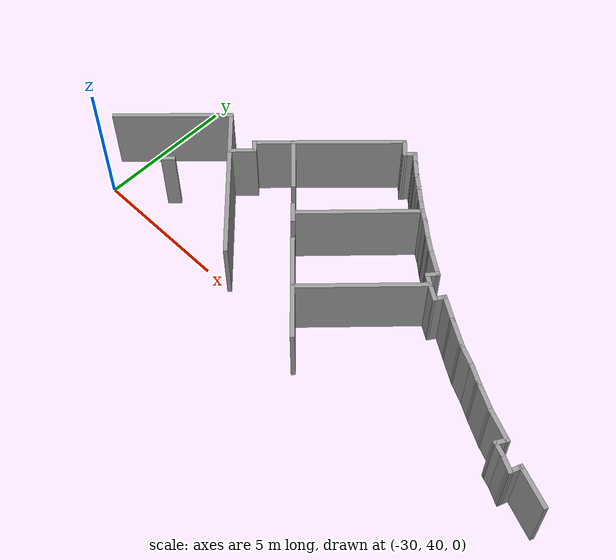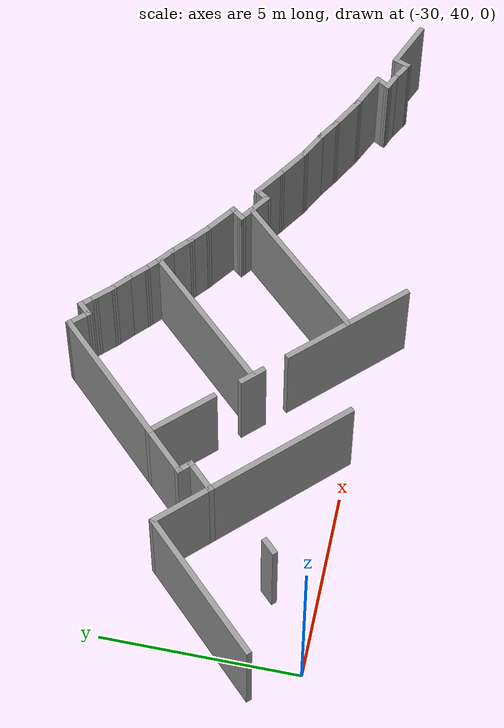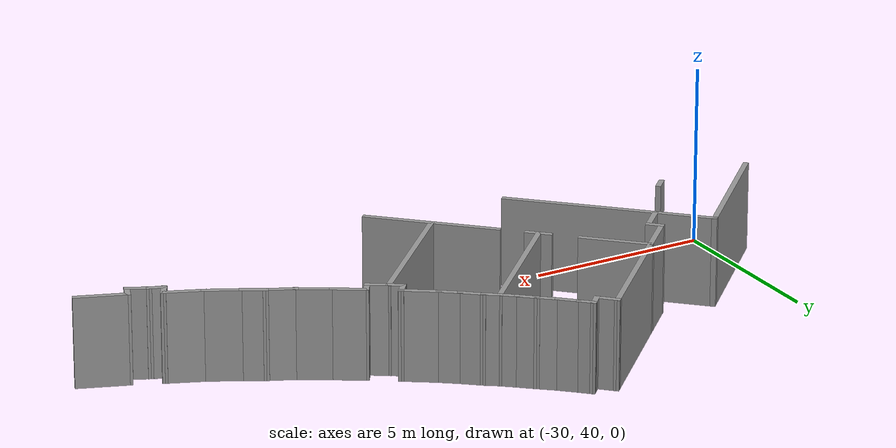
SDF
<sdf version="1.7">
 <model name="TI_1">
  <pose>-0.810812 4.85868 0 0 -0 0</pose>
  <link name="Wall_281">
   <collision name="Wall_281_Collision">
    <geometry><box><size>1.5 0.15 2.5</size></box></geometry>
    <pose>0 0 1.25 0 -0 0</pose>
   </collision>
   <visual name="Wall_281_Visual">
    <pose>0 0 1.25 0 -0 0</pose>
    <geometry><box><size>1.5 0.15 2.5</size></box></geometry>
    <material>
     <script><uri>file://media/materials/scripts/gazebo.material</uri><name>Gazebo/Grey</name></script>
     <ambient>1 1 1 1</ambient>
    </material>
    <meta><layer>0</layer></meta>
   </visual>
   <pose>-25.1662 39.3967 0 0 -0 -2.35619</pose>
  </link>
  <link name="Wall_282">
   <collision name="Wall_282_Collision">
    <geometry><box><size>0.5 0.15 2.5</size></box></geometry>
    <pose>0 0 1.25 0 -0 0</pose>
   </collision>
   <visual name="Wall_282_Visual">
    <pose>0 0 1.25 0 -0 0</pose>
    <geometry><box><size>0.5 0.15 2.5</size></box></geometry>
    <material>
     <script><uri>file://media/materials/scripts/gazebo.material</uri><name>Gazebo/Grey</name></script>
     <ambient>1 1 1 1</ambient>
    </material>
    <meta><layer>0</layer></meta>
   </visual>
   <pose>-25.5198 38.7957 0 0 -0 -0.785398</pose>
  </link>
  <link name="Wall_283">
   <collision name="Wall_283_Collision">
    <geometry><box><size>1 0.15 2.5</size></box></geometry>
    <pose>0 0 1.25 0 -0 0</pose>
   </collision>
   <visual name="Wall_283_Visual">
    <pose>0 0 1.25 0 -0 0</pose>
    <geometry><box><size>1 0.15 2.5</size></box></geometry>
    <material>
     <script><uri>file://media/materials/scripts/gazebo.material</uri><name>Gazebo/Grey</name></script>
     <ambient>1 1 1 1</ambient>
    </material>
    <meta><layer>0</layer></meta>
   </visual>
   <pose>-25.6966 38.3714 0 0 -0 -2.35619</pose>
  </link>
  <link name="Wall_284">
   <collision name="Wall_284_Collision">
    <geometry><box><size>1.75 0.15 2.5</size></box></geometry>
    <pose>0 0 1.25 0 -0 0</pose>
   </collision>
   <visual name="Wall_284_Visual">
    <pose>0 0 1.25 0 -0 0</pose>
    <geometry><box><size>1.75 0.15 2.5</size></box></geometry>
    <material>
     <script><uri>file://media/materials/scripts/gazebo.material</uri><name>Gazebo/Grey</name></script>
     <ambient>1 1 1 1</ambient>
    </material>
    <meta><layer>0</layer></meta>
   </visual>
   <pose>-26.5628 38.6366 0 0 -0 2.35619</pose>
  </link>
  <link name="Wall_285">
   <collision name="Wall_285_Collision">
    <geometry><box><size>4.25 0.15 2.5</size></box></geometry>
    <pose>0 0 1.25 0 -0 0</pose>
   </collision>
   <visual name="Wall_285_Visual">
    <pose>0 0 1.25 0 -0 0</pose>
    <geometry><box><size>4.25 0.15 2.5</size></box></geometry>
    <material>
     <script><uri>file://media/materials/scripts/gazebo.material</uri><name>Gazebo/Grey</name></script>
     <ambient>1 1 1 1</ambient>
    </material>
    <meta><layer>0</layer></meta>
   </visual>
   <pose>-28.578 37.7527 0 0 -0 -2.35619</pose>
  </link>
  <link name="Wall_290">
   <collision name="Wall_290_Collision">
    <geometry><box><size>4.25 0.15 2.5</size></box></geometry>
    <pose>0 0 1.25 0 -0 0</pose>
   </collision>
   <visual name="Wall_290_Visual">
    <pose>0 0 1.25 0 -0 0</pose>
    <geometry><box><size>4.25 0.15 2.5</size></box></geometry>
    <material>
     <script><uri>file://media/materials/scripts/gazebo.material</uri><name>Gazebo/Grey</name></script>
     <ambient>1 1 1 1</ambient>
    </material>
    <meta><layer>0</layer></meta>
   </visual>
   <pose>-24.5475 36.6214 0 0 -0 -0.785398</pose>
  </link>
  <link name="Wall_295">
   <collision name="Wall_295_Collision">
    <geometry><box><size>0.48651 0.15 2.5</size></box></geometry>
    <pose>0 0 1.25 0 -0 0</pose>
   </collision>
   <visual name="Wall_295_Visual">
    <pose>0 0 1.25 0 -0 0</pose>
    <geometry><box><size>0.48651 0.15 2.5</size></box></geometry>
    <material>
     <script><uri>file://media/materials/scripts/gazebo.material</uri><name>Gazebo/Grey</name></script>
     <ambient>1 1 1 1</ambient>
    </material>
    <meta><layer>0</layer></meta>
   </visual>
   <pose>-27.242 36.3552 0 0 -0 0.785398</pose>
  </link>
  <link name="Wall_48">
   <collision name="Wall_48_Collision">
    <geometry><box><size>2 0.15 2.5</size></box></geometry>
    <pose>0 0 1.25 0 -0 0</pose>
   </collision>
   <visual name="Wall_48_Visual">
    <pose>0 0 1.25 0 -0 0</pose>
    <geometry><box><size>2 0.15 2.5</size></box></geometry>
    <material>
     <script><uri>file://media/materials/scripts/gazebo.material</uri><name>Gazebo/Grey</name></script>
     <ambient>1 1 1 1</ambient>
    </material>
    <meta><layer>0</layer></meta>
   </visual>
   <pose>-24.0349 39.22 0 0 -0 -0.785398</pose>
  </link>
  <link name="Wall_50">
   <collision name="Wall_50_Collision">
    <geometry><box><size>0.75 0.15 2.5</size></box></geometry>
    <pose>0 0 1.25 0 -0 0</pose>
   </collision>
   <visual name="Wall_50_Visual">
    <pose>0 0 1.25 0 -0 0</pose>
    <geometry><box><size>0.75 0.15 2.5</size></box></geometry>
    <material>
     <script><uri>file://media/materials/scripts/gazebo.material</uri><name>Gazebo/Grey</name></script>
     <ambient>1 1 1 1</ambient>
    </material>
    <meta><layer>0</layer></meta>
   </visual>
   <pose>-22.5808 37.7463 0 0 -0 -0.785398</pose>
  </link>
  <link name="Wall_52">
   <collision name="Wall_52_Collision">
    <geometry><box><size>3.75 0.15 2.5</size></box></geometry>
    <pose>0 0 1.25 0 -0 0</pose>
   </collision>
   <visual name="Wall_52_Visual">
    <pose>0 0 1.25 0 -0 0</pose>
    <geometry><box><size>3.75 0.15 2.5</size></box></geometry>
    <material>
     <script><uri>file://media/materials/scripts/gazebo.material</uri><name>Gazebo/Grey</name></script>
     <ambient>1 1 1 1</ambient>
    </material>
    <meta><layer>0</layer></meta>
   </visual>
   <pose>-20.5351 35.6994 0 0 -0 -0.785398</pose>
  </link>
  <link name="Wall_59">
   <collision name="Wall_59_Collision">
    <geometry><box><size>4 0.15 2.5</size></box></geometry>
    <pose>0 0 1.25 0 -0 0</pose>
   </collision>
   <visual name="Wall_59_Visual">
    <pose>0 0 1.25 0 -0 0</pose>
    <geometry><box><size>4 0.15 2.5</size></box></geometry>
    <material>
     <script><uri>file://media/materials/scripts/gazebo.material</uri><name>Gazebo/Grey</name></script>
     <ambient>1 1 1 1</ambient>
    </material>
    <meta><layer>0</layer></meta>
   </visual>
   <pose>-23.3278 41.2352 0 0 -0 0.785398</pose>
  </link>
  <link name="Wall_60">
   <collision name="Wall_60_Collision">
    <geometry><box><size>0.698847 0.15 2.5</size></box></geometry>
    <pose>0 0 1.25 0 -0 0</pose>
   </collision>
   <visual name="Wall_60_Visual">
    <pose>0 0 1.25 0 -0 0</pose>
    <geometry><box><size>0.698847 0.15 2.5</size></box></geometry>
    <material>
     <script><uri>file://media/materials/scripts/gazebo.material</uri><name>Gazebo/Grey</name></script>
     <ambient>1 1 1 1</ambient>
    </material>
    <meta><layer>0</layer></meta>
   </visual>
   <pose>-21.7768 42.3982 0 0 -0 -0.806995</pose>
  </link>
  <link name="Wall_61">
   <collision name="Wall_61_Collision">
    <geometry><box><size>0.494598 0.15 2.5</size></box></geometry>
    <pose>0 0 1.25 0 -0 0</pose>
   </collision>
   <visual name="Wall_61_Visual">
    <pose>0 0 1.25 0 -0 0</pose>
    <geometry><box><size>0.494598 0.15 2.5</size></box></geometry>
    <material>
     <script><uri>file://media/materials/scripts/gazebo.material</uri><name>Gazebo/Grey</name></script>
     <ambient>1 1 1 1</ambient>
    </material>
    <meta><layer>0</layer></meta>
   </visual>
   <pose>-21.4676 42.3243 0 0 -0 0.805804</pose>
  </link>
  <link name="Wall_62">
   <collision name="Wall_62_Collision">
    <geometry><box><size>0.529682 0.15 2.5</size></box></geometry>
    <pose>0 0 1.25 0 -0 0</pose>
   </collision>
   <visual name="Wall_62_Visual">
    <pose>0 0 1.25 0 -0 0</pose>
    <geometry><box><size>0.529682 0.15 2.5</size></box></geometry>
    <material>
     <script><uri>file://media/materials/scripts/gazebo.material</uri><name>Gazebo/Grey</name></script>
     <ambient>1 1 1 1</ambient>
    </material>
    <meta><layer>0</layer></meta>
   </visual>
   <pose>-21.2141 42.3144 0 0 -0 -0.785398</pose>
  </link>
  <link name="Wall_63">
   <collision name="Wall_63_Collision">
    <geometry><box><size>0.705505 0.15 2.5</size></box></geometry>
    <pose>0 0 1.25 0 -0 0</pose>
   </collision>
   <visual name="Wall_63_Visual">
    <pose>0 0 1.25 0 -0 0</pose>
    <geometry><box><size>0.705505 0.15 2.5</size></box></geometry>
    <material>
     <script><uri>file://media/materials/scripts/gazebo.material</uri><name>Gazebo/Grey</name></script>
     <ambient>1 1 1 1</ambient>
    </material>
    <meta><layer>0</layer></meta>
   </visual>
   <pose>-20.881 41.9862 0 0 -0 -0.772741</pose>
  </link>
  <link name="Wall_64">
   <collision name="Wall_64_Collision">
    <geometry><box><size>0.672012 0.15 2.5</size></box></geometry>
    <pose>0 0 1.25 0 -0 0</pose>
   </collision>
   <visual name="Wall_64_Visual">
    <pose>0 0 1.25 0 -0 0</pose>
    <geometry><box><size>0.672012 0.15 2.5</size></box></geometry>
    <material>
     <script><uri>file://media/materials/scripts/gazebo.material</uri><name>Gazebo/Grey</name></script>
     <ambient>1 1 1 1</ambient>
    </material>
    <meta><layer>0</layer></meta>
   </visual>
   <pose>-20.4832 41.6233 0 0 -0 -0.704494</pose>
  </link>
  <link name="Wall_65">
   <collision name="Wall_65_Collision">
    <geometry><box><size>0.671064 0.15 2.5</size></box></geometry>
    <pose>0 0 1.25 0 -0 0</pose>
   </collision>
   <visual name="Wall_65_Visual">
    <pose>0 0 1.25 0 -0 0</pose>
    <geometry><box><size>0.671064 0.15 2.5</size></box></geometry>
    <material>
     <script><uri>file://media/materials/scripts/gazebo.material</uri><name>Gazebo/Grey</name></script>
     <ambient>1 1 1 1</ambient>
    </material>
    <meta><layer>0</layer></meta>
   </visual>
   <pose>-20.0904 41.2802 0 0 -0 -0.731397</pose>
  </link>
  <link name="Wall_66">
   <collision name="Wall_66_Collision">
    <geometry><box><size>0.594355 0.15 2.5</size></box></geometry>
    <pose>0 0 1.25 0 -0 0</pose>
   </collision>
   <visual name="Wall_66_Visual">
    <pose>0 0 1.25 0 -0 0</pose>
    <geometry><box><size>0.594355 0.15 2.5</size></box></geometry>
    <material>
     <script><uri>file://media/materials/scripts/gazebo.material</uri><name>Gazebo/Grey</name></script>
     <ambient>1 1 1 1</ambient>
    </material>
    <meta><layer>0</layer></meta>
   </visual>
   <pose>-19.7275 40.962 0 0 -0 -0.706199</pose>
  </link>
  <link name="Wall_68">
   <collision name="Wall_68_Collision">
    <geometry><box><size>4.45332 0.15 2.5</size></box></geometry>
    <pose>0 0 1.25 0 -0 0</pose>
   </collision>
   <visual name="Wall_68_Visual">
    <pose>0 0 1.25 0 -0 0</pose>
    <geometry><box><size>4.45332 0.15 2.5</size></box></geometry>
    <material>
     <script><uri>file://media/materials/scripts/gazebo.material</uri><name>Gazebo/Grey</name></script>
     <ambient>1 1 1 1</ambient>
    </material>
    <meta><layer>0</layer></meta>
   </visual>
   <pose>-21.0677 39.2842 0 0 -0 -2.34817</pose>
  </link>
  <link name="Wall_70">
   <collision name="Wall_70_Collision">
    <geometry><box><size>0.572828 0.15 2.5</size></box></geometry>
    <pose>0 0 1.25 0 -0 0</pose>
   </collision>
   <visual name="Wall_70_Visual">
    <pose>0 0 1.25 0 -0 0</pose>
    <geometry><box><size>0.572828 0.15 2.5</size></box></geometry>
    <material>
     <script><uri>file://media/materials/scripts/gazebo.material</uri><name>Gazebo/Grey</name></script>
     <ambient>1 1 1 1</ambient>
    </material>
    <meta><layer>0</layer></meta>
   </visual>
   <pose>-19.3881 40.6927 0 0 -0 -0.633532</pose>
  </link>
  <link name="Wall_71">
   <collision name="Wall_71_Collision">
    <geometry><box><size>0.740996 0.15 2.5</size></box></geometry>
    <pose>0 0 1.25 0 -0 0</pose>
   </collision>
   <visual name="Wall_71_Visual">
    <pose>0 0 1.25 0 -0 0</pose>
    <geometry><box><size>0.740996 0.15 2.5</size></box></geometry>
    <material>
     <script><uri>file://media/materials/scripts/gazebo.material</uri><name>Gazebo/Grey</name></script>
     <ambient>1 1 1 1</ambient>
    </material>
    <meta><layer>0</layer></meta>
   </visual>
   <pose>-18.9929 40.3758 0 0 -0 -0.706199</pose>
  </link>
  <link name="Wall_72">
   <collision name="Wall_72_Collision">
    <geometry><box><size>0.705607 0.15 2.5</size></box></geometry>
    <pose>0 0 1.25 0 -0 0</pose>
   </collision>
   <visual name="Wall_72_Visual">
    <pose>0 0 1.25 0 -0 0</pose>
    <geometry><box><size>0.705607 0.15 2.5</size></box></geometry>
    <material>
     <script><uri>file://media/materials/scripts/gazebo.material</uri><name>Gazebo/Grey</name></script>
     <ambient>1 1 1 1</ambient>
    </material>
    <meta><layer>0</layer></meta>
   </visual>
   <pose>-18.5498 40.0121 0 0 -0 -0.667306</pose>
  </link>
  <link name="Wall_73">
   <collision name="Wall_73_Collision">
    <geometry><box><size>1.10018 0.15 2.5</size></box></geometry>
    <pose>0 0 1.25 0 -0 0</pose>
   </collision>
   <visual name="Wall_73_Visual">
    <pose>0 0 1.25 0 -0 0</pose>
    <geometry><box><size>1.10018 0.15 2.5</size></box></geometry>
    <material>
     <script><uri>file://media/materials/scripts/gazebo.material</uri><name>Gazebo/Grey</name></script>
     <ambient>1 1 1 1</ambient>
    </material>
    <meta><layer>0</layer></meta>
   </visual>
   <pose>-17.9415 39.5691 0 0 -0 -0.607305</pose>
  </link>
  <link name="Wall_74">
   <collision name="Wall_74_Collision">
    <geometry><box><size>0.488725 0.15 2.5</size></box></geometry>
    <pose>0 0 1.25 0 -0 0</pose>
   </collision>
   <visual name="Wall_74_Visual">
    <pose>0 0 1.25 0 -0 0</pose>
    <geometry><box><size>0.488725 0.15 2.5</size></box></geometry>
    <material>
     <script><uri>file://media/materials/scripts/gazebo.material</uri><name>Gazebo/Grey</name></script>
     <ambient>1 1 1 1</ambient>
    </material>
    <meta><layer>0</layer></meta>
   </visual>
   <pose>-17.6571 39.1657 0 0 -0 -2.24554</pose>
  </link>
  <link name="Wall_75">
   <collision name="Wall_75_Collision">
    <geometry><box><size>0.520536 0.15 2.5</size></box></geometry>
    <pose>0 0 1.25 0 -0 0</pose>
   </collision>
   <visual name="Wall_75_Visual">
    <pose>0 0 1.25 0 -0 0</pose>
    <geometry><box><size>0.520536 0.15 2.5</size></box></geometry>
    <material>
     <script><uri>file://media/materials/scripts/gazebo.material</uri><name>Gazebo/Grey</name></script>
     <ambient>1 1 1 1</ambient>
    </material>
    <meta><layer>0</layer></meta>
   </visual>
   <pose>-17.6109 38.9277 0 0 -0 -0.607802</pose>
  </link>
  <link name="Wall_76">
   <collision name="Wall_76_Collision">
    <geometry><box><size>4.52666 0.15 2.5</size></box></geometry>
    <pose>0 0 1.25 0 -0 0</pose>
   </collision>
   <visual name="Wall_76_Visual">
    <pose>0 0 1.25 0 -0 0</pose>
    <geometry><box><size>4.52666 0.15 2.5</size></box></geometry>
    <material>
     <script><uri>file://media/materials/scripts/gazebo.material</uri><name>Gazebo/Grey</name></script>
     <ambient>1 1 1 1</ambient>
    </material>
    <meta><layer>0</layer></meta>
   </visual>
   <pose>-18.9929 37.2613 0 0 -0 -2.34765</pose>
  </link>
  <link name="Wall_78">
   <collision name="Wall_78_Collision">
    <geometry><box><size>0.703873 0.15 2.5</size></box></geometry>
    <pose>0 0 1.25 0 -0 0</pose>
   </collision>
   <visual name="Wall_78_Visual">
    <pose>0 0 1.25 0 -0 0</pose>
    <geometry><box><size>0.703873 0.15 2.5</size></box></geometry>
    <material>
     <script><uri>file://media/materials/scripts/gazebo.material</uri><name>Gazebo/Grey</name></script>
     <ambient>1 1 1 1</ambient>
    </material>
    <meta><layer>0</layer></meta>
   </visual>
   <pose>-17.2273 38.6698 0 0 -0 -0.58138</pose>
  </link>
  <link name="Wall_79">
   <collision name="Wall_79_Collision">
    <geometry><box><size>0.483784 0.15 2.5</size></box></geometry>
    <pose>0 0 1.25 0 -0 0</pose>
   </collision>
   <visual name="Wall_79_Visual">
    <pose>0 0 1.25 0 -0 0</pose>
    <geometry><box><size>0.483784 0.15 2.5</size></box></geometry>
    <material>
     <script><uri>file://media/materials/scripts/gazebo.material</uri><name>Gazebo/Grey</name></script>
     <ambient>1 1 1 1</ambient>
    </material>
    <meta><layer>0</layer></meta>
   </visual>
   <pose>-16.9033 38.6565 0 0 -0 0.982794</pose>
  </link>
  <link name="Wall_80">
   <collision name="Wall_80_Collision">
    <geometry><box><size>1.01216 0.15 2.5</size></box></geometry>
    <pose>0 0 1.25 0 -0 0</pose>
   </collision>
   <visual name="Wall_80_Visual">
    <pose>0 0 1.25 0 -0 0</pose>
    <geometry><box><size>1.01216 0.15 2.5</size></box></geometry>
    <material>
     <script><uri>file://media/materials/scripts/gazebo.material</uri><name>Gazebo/Grey</name></script>
     <ambient>1 1 1 1</ambient>
    </material>
    <meta><layer>0</layer></meta>
   </visual>
   <pose>-16.4471 38.564 0 0 -0 -0.566729</pose>
  </link>
  <link name="Wall_81">
   <collision name="Wall_81_Collision">
    <geometry><box><size>1.08224 0.15 2.5</size></box></geometry>
    <pose>0 0 1.25 0 -0 0</pose>
   </collision>
   <visual name="Wall_81_Visual">
    <pose>0 0 1.25 0 -0 0</pose>
    <geometry><box><size>1.08224 0.15 2.5</size></box></geometry>
    <material>
     <script><uri>file://media/materials/scripts/gazebo.material</uri><name>Gazebo/Grey</name></script>
     <ambient>1 1 1 1</ambient>
    </material>
    <meta><layer>0</layer></meta>
   </visual>
   <pose>-15.6866 38.0879 0 0 -0 -0.552584</pose>
  </link>
  <link name="Wall_82">
   <collision name="Wall_82_Collision">
    <geometry><box><size>0.913049 0.15 2.5</size></box></geometry>
    <pose>0 0 1.25 0 -0 0</pose>
   </collision>
   <visual name="Wall_82_Visual">
    <pose>0 0 1.25 0 -0 0</pose>
    <geometry><box><size>0.913049 0.15 2.5</size></box></geometry>
    <material>
     <script><uri>file://media/materials/scripts/gazebo.material</uri><name>Gazebo/Grey</name></script>
     <ambient>1 1 1 1</ambient>
    </material>
    <meta><layer>0</layer></meta>
   </visual>
   <pose>-14.946 37.6779 0 0 -0 -0.448145</pose>
  </link>
  <link name="Wall_85">
   <collision name="Wall_85_Collision">
    <geometry><box><size>0.75 0.15 2.5</size></box></geometry>
    <pose>0 0 1.25 0 -0 0</pose>
   </collision>
   <visual name="Wall_85_Visual">
    <pose>0 0 1.25 0 -0 0</pose>
    <geometry><box><size>0.75 0.15 2.5</size></box></geometry>
    <material>
     <script><uri>file://media/materials/scripts/gazebo.material</uri><name>Gazebo/Grey</name></script>
     <ambient>1 1 1 1</ambient>
    </material>
    <meta><layer>0</layer></meta>
   </visual>
   <pose>-14.3424 37.3626 0 0 -0 -0.523599</pose>
  </link>
  <link name="Wall_86">
   <collision name="Wall_86_Collision">
    <geometry><box><size>1.11988 0.15 2.5</size></box></geometry>
    <pose>0 0 1.25 0 -0 0</pose>
   </collision>
   <visual name="Wall_86_Visual">
    <pose>0 0 1.25 0 -0 0</pose>
    <geometry><box><size>1.11988 0.15 2.5</size></box></geometry>
    <material>
     <script><uri>file://media/materials/scripts/gazebo.material</uri><name>Gazebo/Grey</name></script>
     <ambient>1 1 1 1</ambient>
    </material>
    <meta><layer>0</layer></meta>
   </visual>
   <pose>-13.6537 36.9862 0 0 -0 -0.48571</pose>
  </link>
  <link name="Wall_87">
   <collision name="Wall_87_Collision">
    <geometry><box><size>1.17737 0.15 2.5</size></box></geometry>
    <pose>0 0 1.25 0 -0 0</pose>
   </collision>
   <visual name="Wall_87_Visual">
    <pose>0 0 1.25 0 -0 0</pose>
    <geometry><box><size>1.17737 0.15 2.5</size></box></geometry>
    <material>
     <script><uri>file://media/materials/scripts/gazebo.material</uri><name>Gazebo/Grey</name></script>
     <ambient>1 1 1 1</ambient>
    </material>
    <meta><layer>0</layer></meta>
   </visual>
   <pose>-12.7522 36.5587 0 0 -0 -0.402321</pose>
  </link>
  <link name="Wall_88">
   <collision name="Wall_88_Collision">
    <geometry><box><size>0.501844 0.15 2.5</size></box></geometry>
    <pose>0 0 1.25 0 -0 0</pose>
   </collision>
   <visual name="Wall_88_Visual">
    <pose>0 0 1.25 0 -0 0</pose>
    <geometry><box><size>0.501844 0.15 2.5</size></box></geometry>
    <material>
     <script><uri>file://media/materials/scripts/gazebo.material</uri><name>Gazebo/Grey</name></script>
     <ambient>1 1 1 1</ambient>
    </material>
    <meta><layer>0</layer></meta>
   </visual>
   <pose>-12.37 36.2067 0 0 -0 -2.11122</pose>
  </link>
  <link name="Wall_89">
   <collision name="Wall_89_Collision">
    <geometry><box><size>0.538458 0.15 2.5</size></box></geometry>
    <pose>0 0 1.25 0 -0 0</pose>
   </collision>
   <visual name="Wall_89_Visual">
    <pose>0 0 1.25 0 -0 0</pose>
    <geometry><box><size>0.538458 0.15 2.5</size></box></geometry>
    <material>
     <script><uri>file://media/materials/scripts/gazebo.material</uri><name>Gazebo/Grey</name></script>
     <ambient>1 1 1 1</ambient>
    </material>
    <meta><layer>0</layer></meta>
   </visual>
   <pose>-12.2795 35.9854 0 0 -0 -0.370891</pose>
  </link>
  <link name="Wall_92">
   <collision name="Wall_92_Collision">
    <geometry><box><size>0.71676 0.15 2.5</size></box></geometry>
    <pose>0 0 1.25 0 -0 0</pose>
   </collision>
   <visual name="Wall_92_Visual">
    <pose>0 0 1.25 0 -0 0</pose>
    <geometry><box><size>0.71676 0.15 2.5</size></box></geometry>
    <material>
     <script><uri>file://media/materials/scripts/gazebo.material</uri><name>Gazebo/Grey</name></script>
     <ambient>1 1 1 1</ambient>
    </material>
    <meta><layer>0</layer></meta>
   </visual>
   <pose>-11.8471 35.7843 0 0 -0 -0.479519</pose>
  </link>
  <link name="Wall_93">
   <collision name="Wall_93_Collision">
    <geometry><box><size>0.519784 0.15 2.5</size></box></geometry>
    <pose>0 0 1.25 0 -0 0</pose>
   </collision>
   <visual name="Wall_93_Visual">
    <pose>0 0 1.25 0 -0 0</pose>
    <geometry><box><size>0.519784 0.15 2.5</size></box></geometry>
    <material>
     <script><uri>file://media/materials/scripts/gazebo.material</uri><name>Gazebo/Grey</name></script>
     <ambient>1 1 1 1</ambient>
    </material>
    <meta><layer>0</layer></meta>
   </visual>
   <pose>-11.5252 35.8245 0 0 -0 1.18019</pose>
  </link>
  <link name="Wall_94">
   <collision name="Wall_94_Collision">
    <geometry><box><size>1.48721 0.15 2.5</size></box></geometry>
    <pose>0 0 1.25 0 -0 0</pose>
   </collision>
   <visual name="Wall_94_Visual">
    <pose>0 0 1.25 0 -0 0</pose>
    <geometry><box><size>1.48721 0.15 2.5</size></box></geometry>
    <material>
     <script><uri>file://media/materials/scripts/gazebo.material</uri><name>Gazebo/Grey</name></script>
     <ambient>1 1 1 1</ambient>
    </material>
    <meta><layer>0</layer></meta>
   </visual>
   <pose>-10.8313 35.7541 0 0 -0 -0.369334</pose>
  </link>
  <static>1</static>
 </model>
</sdf>
